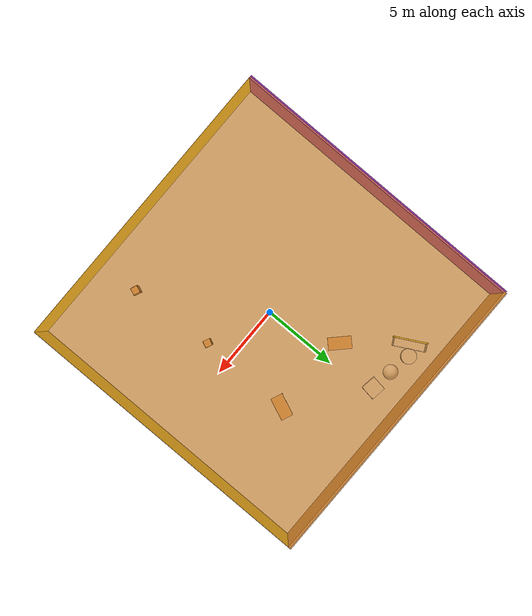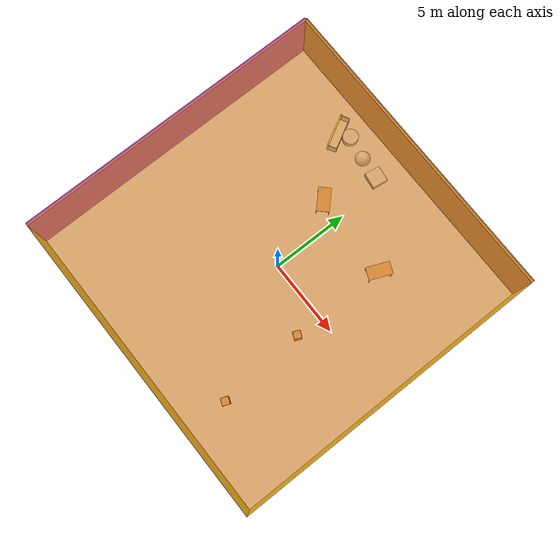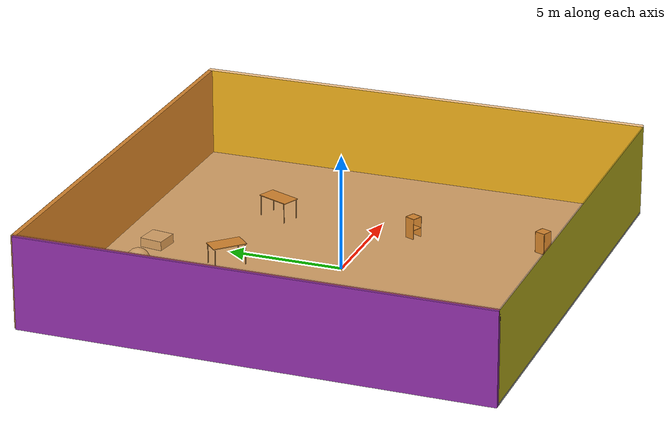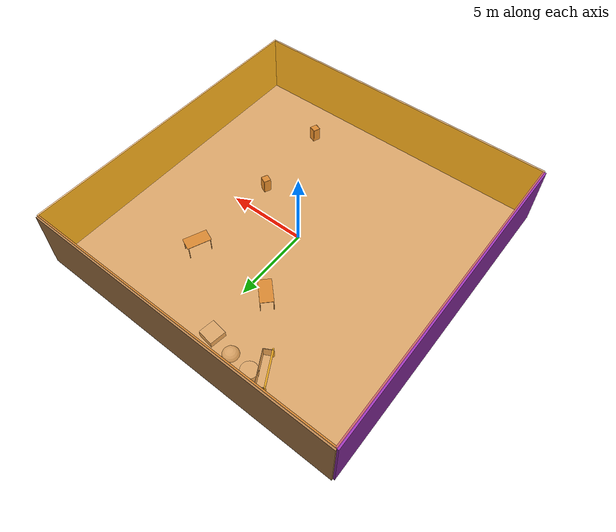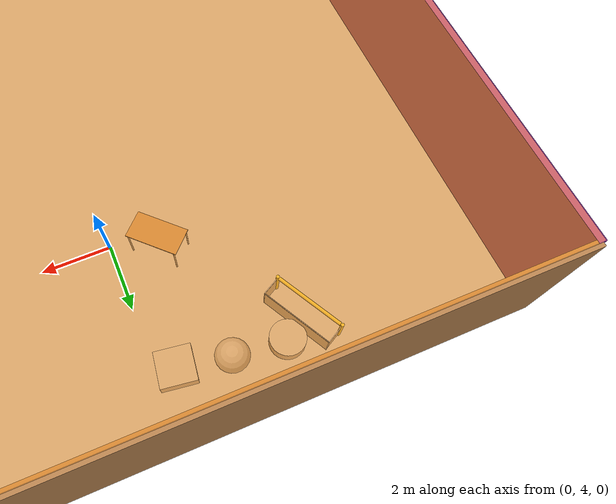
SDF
<sdf version="1.4">
 <world name="default">
  <physics type="ode">
   <max_step_size>0.001</max_step_size>
   <real_time_factor>1</real_time_factor>
   <real_time_update_rate>1000</real_time_update_rate>
   <gravity>0 0 -9.8</gravity>
  </physics>
  <scene><ambient>0.4 0.4 0.4 1</ambient><background>0.7 0.7 0.7 1</background><shadows>1</shadows></scene>
  <model name="Surrounding">
   <static>1</static>
   <link name="Ceiling">
    <collision name="Ceiling_Collision"><geometry><box><size>20 20 0.1</size></box></geometry></collision>
    <visual name="Ceiling_Visual">
     <geometry><box><size>20 20 0.1</size></box></geometry>
     <material>
      <script>
       <uri>file://media/materials/scripts/gazebo.material</uri>
       <name>Gazebo/OrangeTransparent</name>
      </script>
     </material>
    </visual>
    <pose>0 0 4.05 0 0 0</pose>
   </link>
   <link name="Wall_South">
    <collision name="Wall_South_Collision">
     <geometry><box><size>20 0 4</size></box></geometry>
     <pose>0 0 2 0 -0 0</pose>
    </collision>
    <visual name="Wall_South_Visual">
     <pose>0 0 2 0 -0 0</pose>
     <geometry><box><size>20 0 4</size></box></geometry>
     <material>
      <script><uri>file://media/materials/scripts/gazebo.material</uri><name>Gazebo/Yellow</name></script>
     </material>
    </visual>
    <velocity_decay><linear>0</linear><angular>0</angular></velocity_decay>
    <pose>0 -10 0 0 -0 0</pose>
   </link>
   <link name="Wall_East">
    <collision name="Wall_21_Collision">
     <geometry><box><size>20 0 4</size></box></geometry>
     <pose>0 0 2 0 -0 0</pose>
    </collision>
    <visual name="Wall_21_Visual">
     <pose>0 0 2 0 -0 0</pose>
     <geometry><box><size>20 0 4</size></box></geometry>
     <material>
      <script><uri>file://media/materials/scripts/gazebo.material</uri><name>Gazebo/Yellow</name></script>
     </material>
    </visual>
    <velocity_decay><linear>0</linear><angular>0</angular></velocity_decay>
    <pose>10 0 0 0 -0 1.5708</pose>
   </link>
   <link name="Wall_North">
    <collision name="Wall_22_Collision">
     <geometry><box><size>20 0.2 4</size></box></geometry>
     <pose>0 0 2 0 -0 0</pose>
    </collision>
    <visual name="Wall_22_Visual">
     <pose>0 0 2 0 -0 0</pose>
     <geometry><box><size>20 0.2 4</size></box></geometry>
     <material>
      <script><uri>file://media/materials/scripts/gazebo.material</uri><name>Gazebo/WoodFloor</name></script>
     </material>
    </visual>
    <velocity_decay><linear>0</linear><angular>0</angular></velocity_decay>
    <pose>0 10 0 0 -0 0</pose>
   </link>
   <link name="Wall_West">
    <collision name="Wall_23_Collision">
     <geometry><box><size>20 0.2 4</size></box></geometry>
     <pose>0 0 2 0 -0 0</pose>
    </collision>
    <visual name="Wall_23_Visual">
     <pose>0 0 2 0 -0 0</pose>
     <geometry><box><size>20 0.2 4</size></box></geometry>
     <material>
      <script><uri>file://media/materials/scripts/gazebo.material</uri><name>Gazebo/Purple</name></script>
     </material>
    </visual>
    <velocity_decay><linear>0</linear><angular>0</angular></velocity_decay>
    <pose>-10 0 0 0 0 -1.5708</pose>
   </link>
   <link name="Ground_link">
    <collision name="collision">
     <pose>0 0 .05 0 -0 0</pose>
     <geometry><box><size>20 20 0.1</size></box></geometry>
    </collision>
    <visual name="visual">
     <pose>0 0 .05 0 -0 0</pose>
     <geometry><box><size>20 20 0.1</size></box></geometry>
     <material>
      <script><uri>file://media/materials/scripts/gazebo.material</uri><name>Gazebo/LightOn</name></script>
     </material>
    </visual>
   </link>
   <static>1</static>
  </model>
  <spherical_coordinates>
   <surface_model>EARTH_WGS84</surface_model>
   <latitude_deg>0</latitude_deg>
   <longitude_deg>0</longitude_deg>
   <elevation>0</elevation>
   <heading_deg>0</heading_deg>
  </spherical_coordinates>
  <light name="lightball_0" type="diffuse">
   <diffuse>0.8 0.8 0.8 1</diffuse>
   <specular>0.2 0.2 0.2 1</specular>
   <attenuation>
    <range>100</range>
    <constant>0.7</constant>
    <linear>0.01</linear>
    <quadratic>0.001</quadratic>
   </attenuation>
   <direction>-0.5 0.1 -0.9</direction>
   <pose>-4.20154682332 -6.77822955628 1.98493442615 0 0 0</pose>
  </light>
  <light name="lightball_1" type="diffuse">
   <diffuse>0.8 0.8 0.8 1</diffuse>
   <specular>0.2 0.2 0.2 1</specular>
   <attenuation>
    <range>100</range>
    <constant>0.7</constant>
    <linear>0.01</linear>
    <quadratic>0.001</quadratic>
   </attenuation>
   <direction>-0.5 0.1 -0.9</direction>
   <pose>8.00098499346 -9.37876773191 1.76567878764 0 0 0</pose>
  </light>
  <light name="lightball_2" type="diffuse">
   <diffuse>0.8 0.8 0.8 1</diffuse>
   <specular>0.2 0.2 0.2 1</specular>
   <attenuation>
    <range>100</range>
    <constant>0.7</constant>
    <linear>0.01</linear>
    <quadratic>0.001</quadratic>
   </attenuation>
   <direction>-0.5 0.1 -0.9</direction>
   <pose>7.51777037 -4.47977967503 1.79508072805 0 0 0</pose>
  </light>
  <light name="lightball_3" type="diffuse">
   <diffuse>0.8 0.8 0.8 1</diffuse>
   <specular>0.2 0.2 0.2 1</specular>
   <attenuation>
    <range>100</range>
    <constant>0.7</constant>
    <linear>0.01</linear>
    <quadratic>0.001</quadratic>
   </attenuation>
   <direction>-0.5 0.1 -0.9</direction>
   <pose>1.1178363113 6.63680817352 2.02812607557 0 0 0</pose>
  </light>
  <light name="lightball_4" type="diffuse">
   <diffuse>0.8 0.8 0.8 1</diffuse>
   <specular>0.2 0.2 0.2 1</specular>
   <attenuation>
    <range>100</range>
    <constant>0.7</constant>
    <linear>0.01</linear>
    <quadratic>0.001</quadratic>
   </attenuation>
   <direction>-0.5 0.1 -0.9</direction>
   <pose>-2.13210281392 -3.27984733746 0.961790336202 0 0 0</pose>
  </light>
  <light name="lightball_5" type="diffuse">
   <diffuse>0.8 0.8 0.8 1</diffuse>
   <specular>0.2 0.2 0.2 1</specular>
   <attenuation>
    <range>100</range>
    <constant>0.7</constant>
    <linear>0.01</linear>
    <quadratic>0.001</quadratic>
   </attenuation>
   <direction>-0.5 0.1 -0.9</direction>
   <pose>7.92044129823 1.60988646383 3.20674903099 0 0 0</pose>
  </light>
  <light name="lightball_6" type="diffuse">
   <diffuse>0.8 0.8 0.8 1</diffuse>
   <specular>0.2 0.2 0.2 1</specular>
   <attenuation>
    <range>100</range>
    <constant>0.7</constant>
    <linear>0.01</linear>
    <quadratic>0.001</quadratic>
   </attenuation>
   <direction>-0.5 0.1 -0.9</direction>
   <pose>-8.23298414232 5.85815500594 3.14982357425 0 0 0</pose>
  </light>
  <light name="lightball_7" type="diffuse">
   <diffuse>0.8 0.8 0.8 1</diffuse>
   <specular>0.2 0.2 0.2 1</specular>
   <attenuation>
    <range>100</range>
    <constant>0.7</constant>
    <linear>0.01</linear>
    <quadratic>0.001</quadratic>
   </attenuation>
   <direction>-0.5 0.1 -0.9</direction>
   <pose>-4.41092037489 -1.18542826949 2.26756550203 0 0 0</pose>
  </light>
  <light name="lightball_8" type="diffuse">
   <diffuse>0.8 0.8 0.8 1</diffuse>
   <specular>0.2 0.2 0.2 1</specular>
   <attenuation>
    <range>100</range>
    <constant>0.7</constant>
    <linear>0.01</linear>
    <quadratic>0.001</quadratic>
   </attenuation>
   <direction>-0.5 0.1 -0.9</direction>
   <pose>-2.44990833118 3.76246131791 3.31323417373 0 0 0</pose>
  </light>
  <light name="lightball_9" type="diffuse">
   <diffuse>0.8 0.8 0.8 1</diffuse>
   <specular>0.2 0.2 0.2 1</specular>
   <attenuation>
    <range>100</range>
    <constant>0.7</constant>
    <linear>0.01</linear>
    <quadratic>0.001</quadratic>
   </attenuation>
   <direction>-0.5 0.1 -0.9</direction>
   <pose>6.13515231857 -0.0545889773952 3.19016316891 0 0 0</pose>
  </light>
  <include>
   <uri>model://robocup_3Dsim_goal</uri>
   <pose>-4.39163269205 7.89305210935 0 0 0 0.492756300238</pose>
  </include>
  <include><uri>model://table</uri><pose>-1.3524708612 4.57310588116 0 0 0 2.3632563992</pose></include>
  <include>
   <uri>model://textured_shapes</uri>
   <pose>-2.04992646897 8.27560154317 0 0 0 1.43177607667</pose>
  </include>
  <include><uri>model://cabinet</uri><pose>4.3966104553 -7.34099763319 0 0 0 2.76882861235</pose></include>
  <include><uri>model://cabinet</uri><pose>3.99496172986 -1.75021723851 0 0 0 1.14386167301</pose></include>
  <include><uri>model://table</uri><pose>4.04516154246 4.38738963241 0 0 0 1.17263941339</pose></include>
 </world>
</sdf>

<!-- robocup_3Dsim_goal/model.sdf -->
<sdf version="1.5">
  <model name="robocup_3d_goal">
    <static>true</static>
    <link name="left_post">
      <pose>0 1.05 0.45 0 0 0</pose>
      <collision name="collision">
        <geometry>
          <cylinder>
            <radius>0.05</radius>
            <length>0.9</length>
          </cylinder>
        </geometry>
      </collision>
      <visual name="visual">
        <geometry>
          <cylinder>
            <radius>0.05</radius>
            <length>0.9</length>
          </cylinder>
        </geometry>
        <material>
          <script>
            <uri>file://media/materials/scripts/gazebo.material</uri>
            <name>Gazebo/ZincYellow</name>
          </script>
        </material>
      </visual>
    </link>
    <link name="left_support_horiz_lower">
      <pose>0.30 1.05 0.01 0 0 0</pose>
      <collision name="collision">
        <geometry>
          <box>
            <size>0.50 0.02 0.02</size>
          </box>
        </geometry>
      </collision>
      <visual name="visual">
        <geometry>
          <box>
            <size>0.50 0.02 0.02</size>
          </box>
        </geometry>
        <material>
          <script>
            <uri>file://media/materials/scripts/gazebo.material</uri>
            <name>Gazebo/White</name>
          </script>
        </material>
      </visual>
    </link>
    <link name="left_support_horiz_upper">
      <pose>0.30 1.05 0.79 0 0 0</pose>
      <collision name="collision">
        <geometry>
          <box>
            <size>0.50 0.02 0.02</size>
          </box>
        </geometry>
      </collision>
      <visual name="visual">
        <geometry>
          <box>
            <size>0.50 0.02 0.02</size>
          </box>
        </geometry>
        <material>
          <script>
            <uri>file://media/materials/scripts/gazebo.material</uri>
            <name>Gazebo/White</name>
          </script>
        </material>
      </visual>
    </link>
    <link name="left_support_vertical">
      <pose>0.56 1.05 0.4 0 1.5708 0</pose>
      <collision name="collision">
        <geometry>
          <box>
            <size>0.80 0.02 0.02</size>
          </box>
        </geometry>
      </collision>
      <visual name="visual">
        <geometry>
          <box>
            <size>0.80 0.02 0.02</size>
          </box>
        </geometry>
        <material>
          <script>
            <uri>file://media/materials/scripts/gazebo.material</uri>
            <name>Gazebo/White</name>
          </script>
        </material>
      </visual>
    </link>
    <link name="right_support_horiz_lower">
      <pose>0.30 -1.05 0.01 0 0 0</pose>
      <collision name="collision">
        <geometry>
          <box>
            <size>0.50 0.02 0.02</size>
          </box>
        </geometry>
      </collision>
      <visual name="visual">
        <geometry>
          <box>
            <size>0.50 0.02 0.02</size>
          </box>
        </geometry>
        <material>
          <script>
            <uri>file://media/materials/scripts/gazebo.material</uri>
            <name>Gazebo/White</name>
          </script>
        </material>
      </visual>
    </link>
    <link name="right_support_horiz_upper">
      <pose>0.30 -1.05 0.79 0 0 0</pose>
      <collision name="collision">
        <geometry>
          <box>
            <size>0.50 0.02 0.02</size>
          </box>
        </geometry>
      </collision>
      <visual name="visual">
        <geometry>
          <box>
            <size>0.50 0.02 0.02</size>
          </box>
        </geometry>
        <material>
          <script>
            <uri>file://media/materials/scripts/gazebo.material</uri>
            <name>Gazebo/White</name>
          </script>
        </material>
      </visual>
    </link>
    <link name="right_support_vertical">
      <pose>0.56 -1.05 0.4 0 1.5708 0</pose>
      <collision name="collision">
        <geometry>
          <box>
            <size>0.80 0.02 0.02</size>
          </box>
        </geometry>
      </collision>
      <visual name="visual">
        <geometry>
          <box>
            <size>0.80 0.02 0.02</size>
          </box>
        </geometry>
        <material>
          <script>
            <uri>file://media/materials/scripts/gazebo.material</uri>
            <name>Gazebo/White</name>
          </script>
        </material>
      </visual>
    </link>
    <link name="center_support_horiz_lower">
      <pose>0.56 0 0.01 0 1.5708 0</pose>
      <collision name="collision">
        <geometry>
          <box>
            <size>0.02 2.08 0.02</size>
          </box>
        </geometry>
      </collision>
      <visual name="visual">
        <geometry>
          <box>
            <size>0.02 2.08 0.02</size>
          </box>
        </geometry>
        <material>
          <script>
            <uri>file://media/materials/scripts/gazebo.material</uri>
            <name>Gazebo/White</name>
          </script>
        </material>
      </visual>
    </link>
    <link name="center_support_horiz_upper">
      <pose>0.56 0 0.79 0 1.5708 0</pose>
      <collision name="collision">
        <geometry>
          <box>
            <size>0.02 2.08 0.02</size>
          </box>
        </geometry>
      </collision>
      <visual name="visual">
        <geometry>
          <box>
            <size>0.02 2.08 0.02</size>
          </box>
        </geometry>
        <material>
          <script>
            <uri>file://media/materials/scripts/gazebo.material</uri>
            <name>Gazebo/White</name>
          </script>
        </material>
      </visual>
    </link>
    <link name="right_post">
      <pose>0 -1.05 0.45 0 0 0</pose>
      <collision name="collision">
        <geometry>
          <cylinder>
            <radius>0.05</radius>
            <length>0.9</length>
          </cylinder>
        </geometry>
      </collision>
      <visual name="visual">
        <geometry>
          <cylinder>
            <radius>0.05</radius>
            <length>0.9</length>
          </cylinder>
        </geometry>
        <material>
          <script>
            <uri>file://media/materials/scripts/gazebo.material</uri>
            <name>Gazebo/ZincYellow</name>
          </script>
        </material>
      </visual>
    </link>
    <link name="crossbar">
      <pose>0 0 0.85 1.57 1.57 0</pose>
      <collision name="collision">
        <geometry>
          <cylinder>
            <radius>0.05</radius>
            <length>2.0</length>
          </cylinder>
        </geometry>
      </collision>
      <visual name="visual">
        <geometry>
          <cylinder>
            <radius>0.05</radius>
            <length>2.0</length>
          </cylinder>
        </geometry>
        <material>
          <script>
            <uri>file://media/materials/scripts/gazebo.material</uri>
            <name>Gazebo/ZincYellow</name>
          </script>
        </material>
      </visual>
    </link>
    <link name="center_net">
      <pose>0.56 0 0.40 0 0 0</pose>
      <collision name="collision">
        <geometry>
          <box>
            <size>0.01 2.1 0.80</size>
          </box>
        </geometry>
      </collision>
      <visual name="visual">
        <geometry>
          <box>
            <size>0.01 2.1 0.80</size>
          </box>
        </geometry>
        <material>
          <script>
            <uri>model://../model_source/models/robocup09_spl_field/materials/scripts/</uri>
            <uri>model://../model_source/models/robocup09_spl_field/materials/textures/</uri>
            <name>RoboCup/Net</name>
          </script>
        </material>
      </visual>
    </link>
    <link name="left_net">
      <pose>0.30 1.05 0.40 0 0 0</pose>
      <collision name="collision">
        <geometry>
          <box>
            <size>0.50 0.01 0.76</size>
          </box>
        </geometry>
      </collision>
      <visual name="visual">
        <geometry>
          <box>
            <size>0.50 0.01 0.76</size>
          </box>
        </geometry>
        <material>
          <script>
            <uri>model://../model_source/models/robocup09_spl_field/materials/scripts/</uri>
            <uri>model://../model_source/models/robocup09_spl_field/materials/textures/</uri>
            <name>RoboCup/Net</name>
          </script>
        </material>
      </visual>
    </link>
    <link name="right_net">
      <pose>0.30 -1.05 0.40 0 0 0</pose>
      <collision name="collision">
        <geometry>
          <box>
            <size>0.50 0.01 0.76</size>
          </box>
        </geometry>
      </collision>
      <visual name="visual">
        <geometry>
          <box>
            <size>0.50 0.01 0.76</size>
          </box>
        </geometry>
        <material>
          <script>
            <uri>model://../model_source/models/robocup09_spl_field/materials/scripts/</uri>
            <uri>model://../model_source/models/robocup09_spl_field/materials/textures/</uri>
            <name>RoboCup/Net</name>
          </script>
        </material>
      </visual>
    </link>
  </model>
</sdf>

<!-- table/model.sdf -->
<sdf version="1.5">
  <model name="table">
    <static>true</static>
    <link name="link">
      <collision name="surface">
        <pose>0 0 1.0 0 0 0</pose>
        <geometry>
          <box>
            <size>1.5 0.8 0.03</size>
          </box>
        </geometry>
        <surface>
          <friction>
            <ode>
              <mu>0.6</mu>
              <mu2>0.6</mu2>
            </ode>
          </friction>
        </surface>
      </collision>
      <visual name="visual1">
        <pose>0 0 1.0 0 0 0</pose>
        <geometry>
          <box>
            <size>1.5 0.8 0.03</size>
          </box>
        </geometry>
        <material>
          <script>
            <uri>model://media/materials/scripts/gazebo.material</uri>
            <name>Gazebo/Wood</name>
          </script>
        </material>
      </visual>
      <collision name="front_left_leg">
        <pose>0.68 0.38 0.5 0 0 0</pose>
        <geometry>
          <cylinder>
            <radius>0.02</radius>
            <length>1.0</length>
          </cylinder>
        </geometry>
      </collision>
      <visual name="front_left_leg">
        <pose>0.68 0.38 0.5 0 0 0</pose>
        <geometry>
          <cylinder>
            <radius>0.02</radius>
            <length>1.0</length>
          </cylinder>
        </geometry>
        <material>
          <script>
            <uri>model://media/materials/scripts/gazebo.material</uri>
            <name>Gazebo/Grey</name>
          </script>
        </material>
      </visual>
      <collision name="front_right_leg">
        <pose>0.68 -0.38 0.5 0 0 0</pose>
        <geometry>
          <cylinder>
            <radius>0.02</radius>
            <length>1.0</length>
          </cylinder>
        </geometry>
      </collision>
      <visual name="front_right_leg">
        <pose>0.68 -0.38 0.5 0 0 0</pose>
        <geometry>
          <cylinder>
            <radius>0.02</radius>
            <length>1.0</length>
          </cylinder>
        </geometry>
        <material>
          <script>
            <uri>model://media/materials/scripts/gazebo.material</uri>
            <name>Gazebo/Grey</name>
          </script>
        </material>
      </visual>
      <collision name="back_right_leg">
        <pose>-0.68 -0.38 0.5 0 0 0</pose>
        <geometry>
          <cylinder>
            <radius>0.02</radius>
            <length>1.0</length>
          </cylinder>
        </geometry>
      </collision>
      <visual name="back_right_leg">
        <pose>-0.68 -0.38 0.5 0 0 0</pose>
        <geometry>
          <cylinder>
            <radius>0.02</radius>
            <length>1.0</length>
          </cylinder>
        </geometry>
        <material>
          <script>
            <uri>model://media/materials/scripts/gazebo.material</uri>
            <name>Gazebo/Grey</name>
          </script>
        </material>
      </visual>
      <collision name="back_left_leg">
        <pose>-0.68 0.38 0.5 0 0 0</pose>
        <geometry>
          <cylinder>
            <radius>0.02</radius>
            <length>1.0</length>
          </cylinder>
        </geometry>
      </collision>
      <visual name="back_left_leg">
        <pose>-0.68 0.38 0.5 0 0 0</pose>
        <geometry>
          <cylinder>
            <radius>0.02</radius>
            <length>1.0</length>
          </cylinder>
        </geometry>
        <material>
          <script>
            <uri>model://media/materials/scripts/gazebo.material</uri>
            <name>Gazebo/Grey</name>
          </script>
        </material>
      </visual>
    </link>
  </model>
</sdf>

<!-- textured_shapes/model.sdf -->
<sdf version="1.6">
  <model name="textured_shapes">
    <pose>0 0 0.5 0 0 0</pose>
    <link name="box">
      <pose>0 -1.5 0 0 0 0</pose>
      <collision name="collision">
        <geometry>
          <box>
            <size>1 1 1</size>
          </box>
        </geometry>
      </collision>
      <visual name="visual">
        <geometry>
          <box>
            <size>1 1 1</size>
          </box>
        </geometry>
        <material>
          <script>
            <uri>model://../model_source/models/textured_shapes/materials/scripts</uri>
            <uri>model://../model_source/models/textured_shapes/materials/textures</uri>
            <name>TexturedShape/Squares</name>
          </script>
        </material>
      </visual>
    </link>
    <link name="sphere">
      <collision name="collision">
        <geometry>
          <sphere>
            <radius>0.5</radius>
          </sphere>
        </geometry>
      </collision>
      <visual name="visual">
        <geometry>
          <sphere>
            <radius>0.5</radius>
          </sphere>
        </geometry>
        <material>
          <script>
            <uri>model://../model_source/models/textured_shapes/materials/scripts</uri>
            <uri>model://../model_source/models/textured_shapes/materials/textures</uri>
            <name>TexturedShape/Squares</name>
          </script>
        </material>
      </visual>
    </link>
    <link name="cylinder">
      <pose>0 1.5 0 0 0 0</pose>
      <collision name="collision">
        <geometry>
          <cylinder>
            <radius>0.5</radius>
            <length>1</length>
          </cylinder>
        </geometry>
      </collision>
      <visual name="visual">
        <geometry>
          <cylinder>
            <radius>0.5</radius>
            <length>1</length>
          </cylinder>
        </geometry>
        <material>
          <script>
            <uri>model://../model_source/models/textured_shapes/materials/scripts</uri>
            <uri>model://../model_source/models/textured_shapes/materials/textures</uri>
            <name>TexturedShape/Squares</name>
          </script>
        </material>
      </visual>
    </link>
  </model>
</sdf>

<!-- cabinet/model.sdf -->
<sdf version="1.5">
  <model name="cabinet">
    <static>true</static>
    <link name="cabinet_bottom_plate">
      <inertial>
        <pose>0 0 -1 0 0 0</pose>
        <inertia>
          <ixx>2.050000</ixx>
          <ixy>0</ixy>
          <ixz>0</ixz>
          <iyy>2.050000</iyy>
          <iyz>0</iyz>
          <izz>2.050000</izz>
        </inertia>
        <mass>25.000000</mass>
      </inertial>
      <collision name="cabinet_bottom_plate_geom">
        <pose>0 0 0.010000 0 0 0</pose>
        <geometry>
          <box>
            <size>0.450000 0.450000 0.020000</size>
          </box>
        </geometry>
      </collision>
      <visual name="cabinet_bottom_plate_geom_visual">
        <pose>0 0 0.010000 0 0 0</pose>
        <geometry>
          <box>
            <size>0.450000 0.450000 0.020000</size>
          </box>
        </geometry>
        <material>
          <script>
            <uri>model://media/materials/scripts/gazebo.material</uri>
            <name>Gazebo/Wood</name>
          </script>
        </material>
      </visual>
      <collision name="cabinet_bottom_plate_geom_cabinet_back_plate">
        <pose>0.235000 0 0.510000 0 0 0</pose>
        <geometry>
          <box>
            <size>0.020000 0.450000 1.020000</size>
          </box>
        </geometry>
      </collision>
      <visual name="cabinet_bottom_plate_geom_cabinet_back_plate_visual">
        <pose>0.235000 0 0.510000 0 0 0</pose>
        <geometry>
          <box>
            <size>0.020000 0.450000 1.020000</size>
          </box>
        </geometry>
        <material>
          <script>
            <uri>model://media/materials/scripts/gazebo.material</uri>
            <name>Gazebo/Wood</name>
          </script>
        </material>
      </visual>
      <collision name="cabinet_bottom_plate_geom_cabinet_left_plate">
        <pose>0 0.235000 0.510000 0 0 0</pose>
        <geometry>
          <box>
            <size>0.450000 0.020000 1.020000</size>
          </box>
        </geometry>
      </collision>
      <visual name="cabinet_bottom_plate_geom_cabinet_left_plate_visual">
        <pose>0 0.235000 0.510000 0 0 0</pose>
        <geometry>
          <box>
            <size>0.450000 0.020000 1.020000</size>
          </box>
        </geometry>
        <material>
          <script>
            <uri>model://media/materials/scripts/gazebo.material</uri>
            <name>Gazebo/Wood</name>
          </script>
        </material>
      </visual>
      <collision name="cabinet_bottom_plate_geom_cabinet_middle_plate">
        <pose>0 0 0.510000 0 0 0</pose>
        <geometry>
          <box>
            <size>0.450000 0.450000 0.020000</size>
          </box>
        </geometry>
      </collision>
      <visual name="cabinet_bottom_plate_geom_cabinet_middle_plate_visual">
        <pose>0 0 0.510000 0 0 0</pose>
        <geometry>
          <box>
            <size>0.450000 0.450000 0.020000</size>
          </box>
        </geometry>
        <material>
          <script>
            <uri>model://media/materials/scripts/gazebo.material</uri>
            <name>Gazebo/Wood</name>
          </script>
        </material>
      </visual>
      <collision name="cabinet_bottom_plate_geom_cabinet_right_plate">
        <pose>0 -0.235000 0.510000 0 0 0</pose>
        <geometry>
          <box>
            <size>0.450000 0.020000 1.020000</size>
          </box>
        </geometry>
      </collision>
      <visual name="cabinet_bottom_plate_geom_cabinet_right_plate_visual">
        <pose>0 -0.235000 0.510000 0 0 0</pose>
        <geometry>
          <box>
            <size>0.450000 0.020000 1.020000</size>
          </box>
        </geometry>
        <material>
          <script>
            <uri>model://media/materials/scripts/gazebo.material</uri>
            <name>Gazebo/Wood</name>
          </script>
        </material>
      </visual>
      <collision name="cabinet_bottom_plate_geom_cabinet_top_plate">
        <pose>0 0 1.010000 0 0 0</pose>
        <geometry>
          <box>
            <size>0.450000 0.450000 0.020000</size>
          </box>
        </geometry>
      </collision>
      <visual name="cabinet_bottom_plate_geom_cabinet_top_plate_visual">
        <pose>0 0 1.010000 0 0 0</pose>
        <geometry>
          <box>
            <size>0.450000 0.450000 0.020000</size>
          </box>
        </geometry>
        <material>
          <script>
            <uri>model://media/materials/scripts/gazebo.material</uri>
            <name>Gazebo/Wood</name>
          </script>
        </material>
      </visual>
    </link>
  </model>
</sdf>
